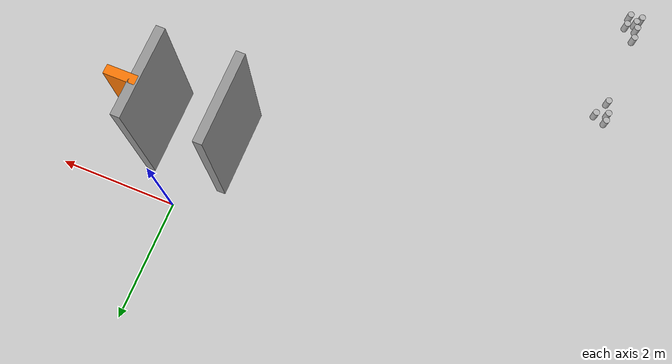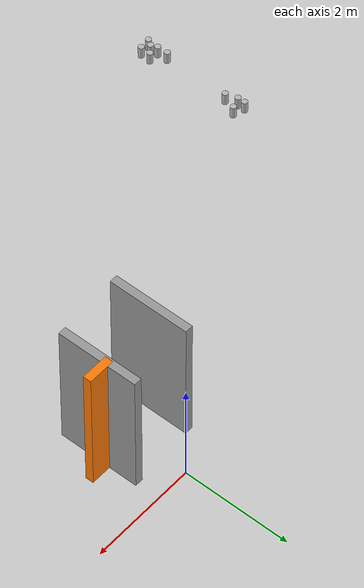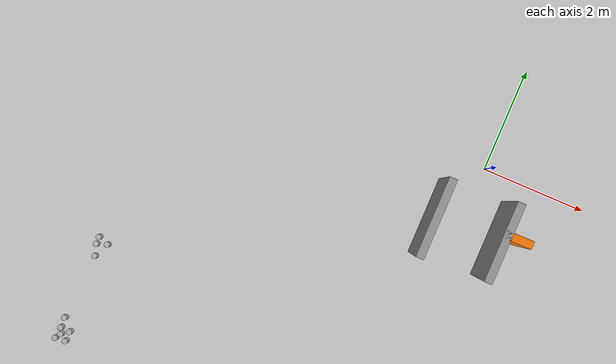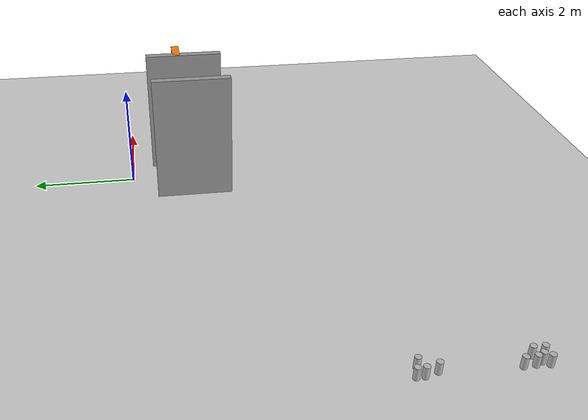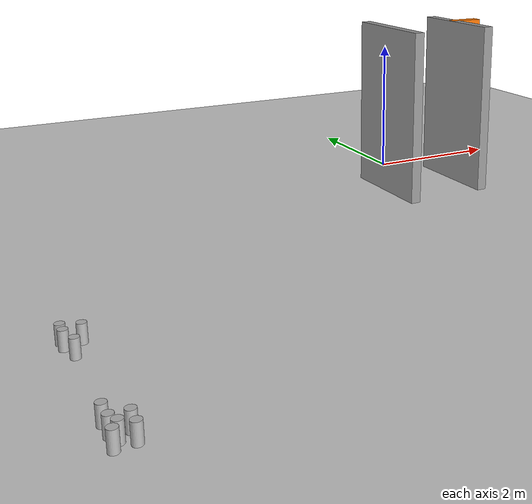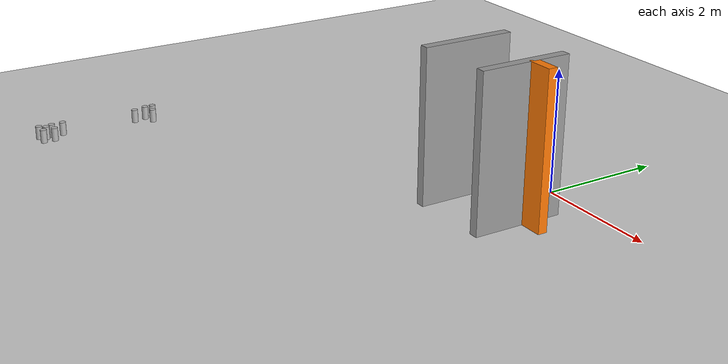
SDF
<sdf version="1.6">
 <world name="default">
  <model name="ground_plane">
   <static>1</static>
   <link name="link">
    <collision name="collision">
     <geometry><plane><normal>0 0 1</normal><size>100 100</size></plane></geometry>
     <surface>
      <contact><collide_bitmask>65535</collide_bitmask></contact>
      <friction><ode><mu>100</mu><mu2>50</mu2></ode></friction>
     </surface>
    </collision>
    <visual name="visual">
     <cast_shadows>0</cast_shadows>
     <geometry><plane><normal>0 0 1</normal><size>100 100</size></plane></geometry>
     <material>
      <script><uri>file://media/materials/scripts/gazebo.material</uri><name>Gazebo/Grey</name></script>
     </material>
    </visual>
   </link>
  </model>
  <model name="hhh">
   <pose>0.165 -1.21 0 0 -0 0</pose>
   <link name="Wall_0">
    <collision name="Wall_0_Collision">
     <geometry><box><size>1.5 0.15 2.5</size></box></geometry>
     <pose>0 0 1.25 0 -0 0</pose>
    </collision>
    <visual name="Wall_0_Visual">
     <pose>0 0 1.25 0 -0 0</pose>
     <geometry><box><size>1.5 0.15 2.5</size></box></geometry>
     <material>
      <script><uri>file://media/materials/scripts/gazebo.material</uri><name>Gazebo/Grey</name></script>
      <ambient>1 1 1 1</ambient>
     </material>
     <meta><layer>0</layer></meta>
    </visual>
    <pose>0.435 0.035 0 0 -0 -1.5708</pose>
   </link>
   <link name="Wall_2">
    <collision name="Wall_2_Collision">
     <geometry><box><size>0.5 0.15 2.5</size></box></geometry>
     <pose>0 0 1.25 0 -0 0</pose>
    </collision>
    <visual name="Wall_2_Visual">
     <pose>0 0 1.25 0 -0 0</pose>
     <geometry><box><size>0.5 0.15 2.5</size></box></geometry>
     <material>
      <script><uri>file://media/materials/scripts/gazebo.material</uri><name>Gazebo/Grey</name></script>
      <ambient>0.996078 0.47451 0.0196078 1</ambient>
     </material>
     <meta><layer>0</layer></meta>
    </visual>
    <pose>0.64 0.18 0 0 -0 0</pose>
   </link>
   <link name="Wall_4">
    <collision name="Wall_4_Collision">
     <geometry><box><size>1.5 0.15 2.5</size></box></geometry>
     <pose>0 0 1.25 0 -0 0</pose>
    </collision>
    <visual name="Wall_4_Visual">
     <pose>0 0 1.25 0 -0 0</pose>
     <geometry><box><size>1.5 0.15 2.5</size></box></geometry>
     <material>
      <script><uri>file://media/materials/scripts/gazebo.material</uri><name>Gazebo/Grey</name></script>
      <ambient>1 1 1 1</ambient>
     </material>
     <meta><layer>0</layer></meta>
    </visual>
    <pose>-0.815 -0.035 0 0 -0 1.5708</pose>
   </link>
   <static>1</static>
  </model>
  <model name="beer_6">
   <link name="link">
    <pose>0 0 0.115 0 -0 0</pose>
    <inertial>
     <mass>0.39</mass>
     <inertia><ixx>0.00058</ixx><ixy>0</ixy><ixz>0</ixz><iyy>0.00058</iyy><iyz>0</iyz><izz>0.00019</izz></inertia>
    </inertial>
    <collision name="collision">
     <geometry><cylinder><radius>0.055</radius><length>0.23</length></cylinder></geometry>
    </collision>
    <visual name="visual">
     <geometry><cylinder><radius>0.055</radius><length>0.23</length></cylinder></geometry>
     <material>
      <script>
       <uri>model://beer/materials/scripts</uri>
       <uri>model://beer/materials/textures</uri>
       <name>Beer/Diffuse</name>
      </script>
     </material>
    </visual>
   </link>
   <pose>-5.99151 -6.07115 -2e-06 1e-06 0 -2e-06</pose>
  </model>
  <model name="beer_7">
   <link name="link">
    <pose>0 0 0.115 0 -0 0</pose>
    <inertial>
     <mass>0.39</mass>
     <inertia><ixx>0.00058</ixx><ixy>0</ixy><ixz>0</ixz><iyy>0.00058</iyy><iyz>0</iyz><izz>0.00019</izz></inertia>
    </inertial>
    <collision name="collision">
     <geometry><cylinder><radius>0.055</radius><length>0.23</length></cylinder></geometry>
    </collision>
    <visual name="visual">
     <geometry><cylinder><radius>0.055</radius><length>0.23</length></cylinder></geometry>
     <material>
      <script>
       <uri>model://beer/materials/scripts</uri>
       <uri>model://beer/materials/textures</uri>
       <name>Beer/Diffuse</name>
      </script>
     </material>
    </visual>
   </link>
   <pose>-6.19047 -6.08712 -2e-06 1e-06 0 -2e-06</pose>
  </model>
  <model name="beer_8">
   <link name="link">
    <pose>0 0 0.115 0 -0 0</pose>
    <inertial>
     <mass>0.39</mass>
     <inertia><ixx>0.00058</ixx><ixy>0</ixy><ixz>0</ixz><iyy>0.00058</iyy><iyz>0</iyz><izz>0.00019</izz></inertia>
    </inertial>
    <collision name="collision">
     <geometry><cylinder><radius>0.055</radius><length>0.23</length></cylinder></geometry>
    </collision>
    <visual name="visual">
     <geometry><cylinder><radius>0.055</radius><length>0.23</length></cylinder></geometry>
     <material>
      <script>
       <uri>model://beer/materials/scripts</uri>
       <uri>model://beer/materials/textures</uri>
       <name>Beer/Diffuse</name>
      </script>
     </material>
    </visual>
   </link>
   <pose>-6.12148 -5.98238 -2e-06 1e-06 0 -2e-06</pose>
  </model>
  <model name="beer_9">
   <link name="link">
    <pose>0 0 0.115 0 -0 0</pose>
    <inertial>
     <mass>0.39</mass>
     <inertia><ixx>0.00058</ixx><ixy>0</ixy><ixz>0</ixz><iyy>0.00058</iyy><iyz>0</iyz><izz>0.00019</izz></inertia>
    </inertial>
    <collision name="collision">
     <geometry><cylinder><radius>0.055</radius><length>0.23</length></cylinder></geometry>
    </collision>
    <visual name="visual">
     <geometry><cylinder><radius>0.055</radius><length>0.23</length></cylinder></geometry>
     <material>
      <script>
       <uri>model://beer/materials/scripts</uri>
       <uri>model://beer/materials/textures</uri>
       <name>Beer/Diffuse</name>
      </script>
     </material>
    </visual>
   </link>
   <pose>-5.98358 -5.87954 -2e-06 1e-06 0 -2e-06</pose>
  </model>
  <model name="beer_10">
   <link name="link">
    <pose>0 0 0.115 0 -0 0</pose>
    <inertial>
     <mass>0.39</mass>
     <inertia><ixx>0.00058</ixx><ixy>0</ixy><ixz>0</ixz><iyy>0.00058</iyy><iyz>0</iyz><izz>0.00019</izz></inertia>
    </inertial>
    <collision name="collision">
     <geometry><cylinder><radius>0.055</radius><length>0.23</length></cylinder></geometry>
    </collision>
    <visual name="visual">
     <geometry><cylinder><radius>0.055</radius><length>0.23</length></cylinder></geometry>
     <material>
      <script>
       <uri>model://beer/materials/scripts</uri>
       <uri>model://beer/materials/textures</uri>
       <name>Beer/Diffuse</name>
      </script>
     </material>
    </visual>
   </link>
   <pose>-6.16938 -5.86997 -2e-06 1e-06 0 -2e-06</pose>
  </model>
  <model name="beer_11">
   <link name="link">
    <pose>0 0 0.115 0 -0 0</pose>
    <inertial>
     <mass>0.39</mass>
     <inertia><ixx>0.00058</ixx><ixy>0</ixy><ixz>0</ixz><iyy>0.00058</iyy><iyz>0</iyz><izz>0.00019</izz></inertia>
    </inertial>
    <collision name="collision">
     <geometry><cylinder><radius>0.055</radius><length>0.23</length></cylinder></geometry>
    </collision>
    <visual name="visual">
     <geometry><cylinder><radius>0.055</radius><length>0.23</length></cylinder></geometry>
     <material>
      <script>
       <uri>model://beer/materials/scripts</uri>
       <uri>model://beer/materials/textures</uri>
       <name>Beer/Diffuse</name>
      </script>
     </material>
    </visual>
   </link>
   <pose>-6.17635 -5.67249 -2e-06 1e-06 0 -2e-06</pose>
  </model>
  <model name="beer_12">
   <link name="link">
    <pose>0 0 0.115 0 -0 0</pose>
    <inertial>
     <mass>0.39</mass>
     <inertia><ixx>0.00058</ixx><ixy>0</ixy><ixz>0</ixz><iyy>0.00058</iyy><iyz>0</iyz><izz>0.00019</izz></inertia>
    </inertial>
    <collision name="collision">
     <geometry><cylinder><radius>0.055</radius><length>0.23</length></cylinder></geometry>
    </collision>
    <visual name="visual">
     <geometry><cylinder><radius>0.055</radius><length>0.23</length></cylinder></geometry>
     <material>
      <script>
       <uri>model://beer/materials/scripts</uri>
       <uri>model://beer/materials/textures</uri>
       <name>Beer/Diffuse</name>
      </script>
     </material>
    </visual>
   </link>
   <pose>-6.17606 -4.02391 -2e-06 1e-06 0 -2e-06</pose>
  </model>
  <model name="beer_13">
   <link name="link">
    <pose>0 0 0.115 0 -0 0</pose>
    <inertial>
     <mass>0.39</mass>
     <inertia><ixx>0.00058</ixx><ixy>0</ixy><ixz>0</ixz><iyy>0.00058</iyy><iyz>0</iyz><izz>0.00019</izz></inertia>
    </inertial>
    <collision name="collision">
     <geometry><cylinder><radius>0.055</radius><length>0.23</length></cylinder></geometry>
    </collision>
    <visual name="visual">
     <geometry><cylinder><radius>0.055</radius><length>0.23</length></cylinder></geometry>
     <material>
      <script>
       <uri>model://beer/materials/scripts</uri>
       <uri>model://beer/materials/textures</uri>
       <name>Beer/Diffuse</name>
      </script>
     </material>
    </visual>
   </link>
   <pose>-6.17463 -4.16269 -2e-06 1e-06 0 -2e-06</pose>
  </model>
  <model name="beer_14">
   <link name="link">
    <pose>0 0 0.115 0 -0 0</pose>
    <inertial>
     <mass>0.39</mass>
     <inertia><ixx>0.00058</ixx><ixy>0</ixy><ixz>0</ixz><iyy>0.00058</iyy><iyz>0</iyz><izz>0.00019</izz></inertia>
    </inertial>
    <collision name="collision">
     <geometry><cylinder><radius>0.055</radius><length>0.23</length></cylinder></geometry>
    </collision>
    <visual name="visual">
     <geometry><cylinder><radius>0.055</radius><length>0.23</length></cylinder></geometry>
     <material>
      <script>
       <uri>model://beer/materials/scripts</uri>
       <uri>model://beer/materials/textures</uri>
       <name>Beer/Diffuse</name>
      </script>
     </material>
    </visual>
   </link>
   <pose>-5.97751 -4.09592 -2e-06 1e-06 0 -2e-06</pose>
  </model>
  <model name="beer_15">
   <link name="link">
    <pose>0 0 0.115 0 -0 0</pose>
    <inertial>
     <mass>0.39</mass>
     <inertia><ixx>0.00058</ixx><ixy>0</ixy><ixz>0</ixz><iyy>0.00058</iyy><iyz>0</iyz><izz>0.00019</izz></inertia>
    </inertial>
    <collision name="collision">
     <geometry><cylinder><radius>0.055</radius><length>0.23</length></cylinder></geometry>
    </collision>
    <visual name="visual">
     <geometry><cylinder><radius>0.055</radius><length>0.23</length></cylinder></geometry>
     <material>
      <script>
       <uri>model://beer/materials/scripts</uri>
       <uri>model://beer/materials/textures</uri>
       <name>Beer/Diffuse</name>
      </script>
     </material>
    </visual>
   </link>
   <pose>-6.11124 -4.38135 -2e-06 1e-06 0 -2e-06</pose>
  </model>
 </world>
</sdf>
